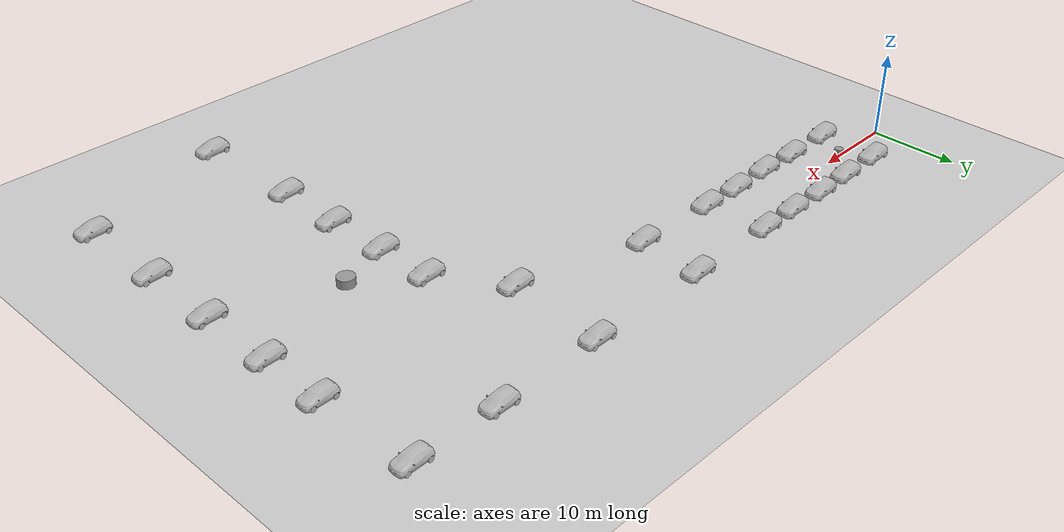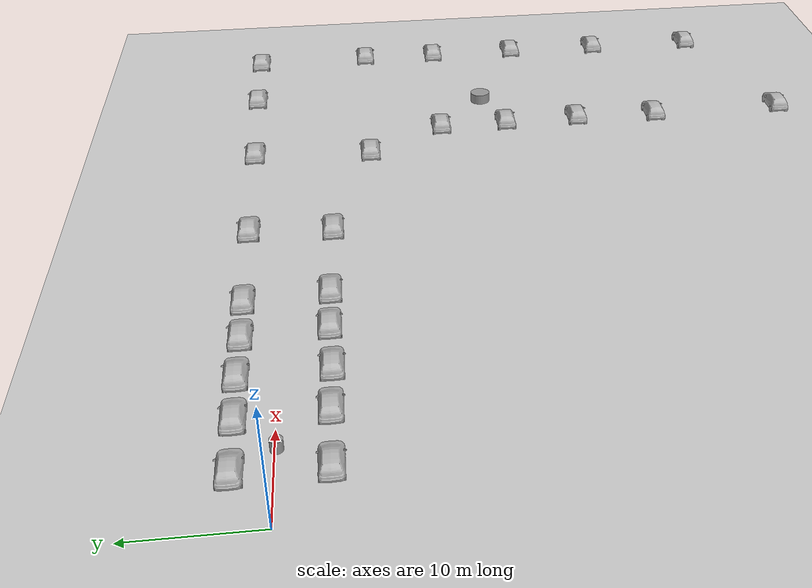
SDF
<sdf version="1.6">
 <world name="default">
  <light name="sun" type="directional">
   <pose>0 0 10 0 -0 0</pose>
   <diffuse>0.8 0.8 0.8 1</diffuse>
   <specular>0.2 0.2 0.2 1</specular>
   <attenuation>
    <range>1000</range>
    <constant>0.9</constant>
    <linear>0.01</linear>
    <quadratic>0.001</quadratic>
   </attenuation>
   <direction>-0.5 0.1 -0.9</direction>
   <spot><inner_angle>0</inner_angle><outer_angle>0</outer_angle><falloff>0</falloff></spot>
  </light>
  <model name="ground_plane">
   <static>1</static>
   <link name="link">
    <collision name="collision">
     <geometry><plane><normal>0 0 1</normal><size>100 100</size></plane></geometry>
     <surface><friction><ode><mu>100</mu><mu2>50</mu2></ode></friction></surface>
    </collision>
    <visual name="visual">
     <cast_shadows>0</cast_shadows>
     <geometry><plane><normal>0 0 1</normal><size>100 100</size></plane></geometry>
     <material>
      <script><uri>file://media/materials/scripts/gazebo.material</uri><name>Gazebo/Grey</name></script>
     </material>
    </visual>
   </link>
  </model>
  <gravity>0 0 -9.8</gravity>
  <magnetic_field>6e-06 2.3e-05 -4.2e-05</magnetic_field>
  <atmosphere type="adiabatic"/>
  <physics name="default_physics" default="0" type="ode">
   <max_step_size>0.001</max_step_size>
   <real_time_factor>1</real_time_factor>
   <real_time_update_rate>1000</real_time_update_rate>
  </physics>
  <scene><ambient>0.4 0.4 0.4 1</ambient><background>0.7 0.7 0.7 1</background><shadows>1</shadows></scene>
  <spherical_coordinates>
   <surface_model>EARTH_WGS84</surface_model>
   <latitude_deg>0</latitude_deg>
   <longitude_deg>0</longitude_deg>
   <elevation>0</elevation>
   <heading_deg>0</heading_deg>
  </spherical_coordinates>
  <model name="hatchback_red">
   <static>1</static>
   <link name="link">
    <collision name="collision">
     <pose>0 0 0 0 -0 1.5708</pose>
     <geometry>
      <mesh><scale>0.0254 0.0254 0.0254</scale><uri>model://hatchback_red/meshes/hatchback.obj</uri></mesh>
     </geometry>
    </collision>
    <visual name="visual">
     <pose>0 0 0 0 -0 1.5708</pose>
     <geometry>
      <mesh><scale>0.0254 0.0254 0.0254</scale><uri>model://hatchback_red/meshes/hatchback.obj</uri></mesh>
     </geometry>
    </visual>
   </link>
   <pose>15.953 3.10391 0 0 -0 0</pose>
  </model>
  <model name="hatchback_red_clone">
   <static>1</static>
   <link name="link">
    <collision name="collision">
     <pose>0 0 0 0 -0 1.5708</pose>
     <geometry>
      <mesh><scale>0.0254 0.0254 0.0254</scale><uri>model://hatchback_red/meshes/hatchback.obj</uri></mesh>
     </geometry>
    </collision>
    <visual name="visual">
     <pose>0 0 0 0 -0 1.5708</pose>
     <geometry>
      <mesh><scale>0.0254 0.0254 0.0254</scale><uri>model://hatchback_red/meshes/hatchback.obj</uri></mesh>
     </geometry>
    </visual>
   </link>
   <pose>5.27619 2.97949 0 0 -0 0</pose>
  </model>
  <model name="hatchback_red_clone_0">
   <static>1</static>
   <link name="link">
    <collision name="collision">
     <pose>0 0 0 0 -0 1.5708</pose>
     <geometry>
      <mesh><scale>0.0254 0.0254 0.0254</scale><uri>model://hatchback_red/meshes/hatchback.obj</uri></mesh>
     </geometry>
    </collision>
    <visual name="visual">
     <pose>0 0 0 0 -0 1.5708</pose>
     <geometry>
      <mesh><scale>0.0254 0.0254 0.0254</scale><uri>model://hatchback_red/meshes/hatchback.obj</uri></mesh>
     </geometry>
    </visual>
   </link>
   <pose>10.9474 3.03597 0 0 -0 0</pose>
  </model>
  <model name="hatchback_red_clone_1">
   <static>1</static>
   <link name="link">
    <collision name="collision">
     <pose>0 0 0 0 -0 1.5708</pose>
     <geometry>
      <mesh><scale>0.0254 0.0254 0.0254</scale><uri>model://hatchback_red/meshes/hatchback.obj</uri></mesh>
     </geometry>
    </collision>
    <visual name="visual">
     <pose>0 0 0 0 -0 1.5708</pose>
     <geometry>
      <mesh><scale>0.0254 0.0254 0.0254</scale><uri>model://hatchback_red/meshes/hatchback.obj</uri></mesh>
     </geometry>
    </visual>
   </link>
   <pose>21.0597 3.02119 0 0 -0 0</pose>
  </model>
  <model name="hatchback_red_clone_2">
   <static>1</static>
   <link name="link">
    <collision name="collision">
     <pose>0 0 0 0 -0 1.5708</pose>
     <geometry>
      <mesh><scale>0.0254 0.0254 0.0254</scale><uri>model://hatchback_red/meshes/hatchback.obj</uri></mesh>
     </geometry>
    </collision>
    <visual name="visual">
     <pose>0 0 0 0 -0 1.5708</pose>
     <geometry>
      <mesh><scale>0.0254 0.0254 0.0254</scale><uri>model://hatchback_red/meshes/hatchback.obj</uri></mesh>
     </geometry>
    </visual>
   </link>
   <pose>26.0705 3.0562 0 0 -0 0</pose>
  </model>
  <model name="hatchback_red_clone_3">
   <static>1</static>
   <link name="link">
    <collision name="collision">
     <pose>0 0 0 0 -0 1.5708</pose>
     <geometry>
      <mesh><scale>0.0254 0.0254 0.0254</scale><uri>model://hatchback_red/meshes/hatchback.obj</uri></mesh>
     </geometry>
    </collision>
    <visual name="visual">
     <pose>0 0 0 0 -0 1.5708</pose>
     <geometry>
      <mesh><scale>0.0254 0.0254 0.0254</scale><uri>model://hatchback_red/meshes/hatchback.obj</uri></mesh>
     </geometry>
    </visual>
   </link>
   <pose>5.16874 -3.97291 0 0 -0 0</pose>
  </model>
  <model name="hatchback_red_clone_4">
   <static>1</static>
   <link name="link">
    <collision name="collision">
     <pose>0 0 0 0 -0 1.5708</pose>
     <geometry>
      <mesh><scale>0.0254 0.0254 0.0254</scale><uri>model://hatchback_red/meshes/hatchback.obj</uri></mesh>
     </geometry>
    </collision>
    <visual name="visual">
     <pose>0 0 0 0 -0 1.5708</pose>
     <geometry>
      <mesh><scale>0.0254 0.0254 0.0254</scale><uri>model://hatchback_red/meshes/hatchback.obj</uri></mesh>
     </geometry>
    </visual>
   </link>
   <pose>11.2993 -3.98709 0 0 -0 0</pose>
  </model>
  <model name="hatchback_red_clone_5">
   <static>1</static>
   <link name="link">
    <collision name="collision">
     <pose>0 0 0 0 -0 1.5708</pose>
     <geometry>
      <mesh><scale>0.0254 0.0254 0.0254</scale><uri>model://hatchback_red/meshes/hatchback.obj</uri></mesh>
     </geometry>
    </collision>
    <visual name="visual">
     <pose>0 0 0 0 -0 1.5708</pose>
     <geometry>
      <mesh><scale>0.0254 0.0254 0.0254</scale><uri>model://hatchback_red/meshes/hatchback.obj</uri></mesh>
     </geometry>
    </visual>
   </link>
   <pose>16.3826 -4.12348 0 0 -0 0</pose>
  </model>
  <model name="hatchback_red_clone_6">
   <static>1</static>
   <link name="link">
    <collision name="collision">
     <pose>0 0 0 0 -0 1.5708</pose>
     <geometry>
      <mesh><scale>0.0254 0.0254 0.0254</scale><uri>model://hatchback_red/meshes/hatchback.obj</uri></mesh>
     </geometry>
    </collision>
    <visual name="visual">
     <pose>0 0 0 0 -0 1.5708</pose>
     <geometry>
      <mesh><scale>0.0254 0.0254 0.0254</scale><uri>model://hatchback_red/meshes/hatchback.obj</uri></mesh>
     </geometry>
    </visual>
   </link>
   <pose>21.7615 -3.98732 0 0 -0 0</pose>
  </model>
  <model name="hatchback_red_clone_7">
   <static>1</static>
   <link name="link">
    <collision name="collision">
     <pose>0 0 0 0 -0 1.5708</pose>
     <geometry>
      <mesh><scale>0.0254 0.0254 0.0254</scale><uri>model://hatchback_red/meshes/hatchback.obj</uri></mesh>
     </geometry>
    </collision>
    <visual name="visual">
     <pose>0 0 0 0 -0 1.5708</pose>
     <geometry>
      <mesh><scale>0.0254 0.0254 0.0254</scale><uri>model://hatchback_red/meshes/hatchback.obj</uri></mesh>
     </geometry>
    </visual>
   </link>
   <pose>26.7964 -4.08175 0 0 -0 0</pose>
  </model>
  <model name="unit_cylinder">
   <pose>7.821 -0.152979 0.499993 -3e-06 2e-06 0</pose>
   <link name="link">
    <inertial>
     <mass>1</mass>
     <inertia><ixx>0.145833</ixx><ixy>0</ixy><ixz>0</ixz><iyy>0.145833</iyy><iyz>0</iyz><izz>0.125</izz></inertia>
    </inertial>
    <collision name="collision">
     <geometry><cylinder><radius>0.5</radius><length>1</length></cylinder></geometry>
    </collision>
    <visual name="visual">
     <geometry><cylinder><radius>0.5</radius><length>1</length></cylinder></geometry>
     <material>
      <script><name>Gazebo/Grey</name><uri>file://media/materials/scripts/gazebo.material</uri></script>
     </material>
    </visual>
   </link>
  </model>
  <model name="hatchback_red_clone_2_clone">
   <static>1</static>
   <link name="link">
    <collision name="collision">
     <pose>0 0 0 0 -0 1.5708</pose>
     <geometry>
      <mesh><scale>0.0254 0.0254 0.0254</scale><uri>model://hatchback_red/meshes/hatchback.obj</uri></mesh>
     </geometry>
    </collision>
    <visual name="visual">
     <pose>0 0 0 0 -0 1.5708</pose>
     <geometry>
      <mesh><scale>0.0254 0.0254 0.0254</scale><uri>model://hatchback_red/meshes/hatchback.obj</uri></mesh>
     </geometry>
    </visual>
   </link>
   <pose>37.406 3.08131 0 0 -0 0</pose>
  </model>
  <model name="hatchback_red_clone_2_clone_0">
   <static>1</static>
   <link name="link">
    <collision name="collision">
     <pose>0 0 0 0 -0 1.5708</pose>
     <geometry>
      <mesh><scale>0.0254 0.0254 0.0254</scale><uri>model://hatchback_red/meshes/hatchback.obj</uri></mesh>
     </geometry>
    </collision>
    <visual name="visual">
     <pose>0 0 0 0 -0 1.5708</pose>
     <geometry>
      <mesh><scale>0.0254 0.0254 0.0254</scale><uri>model://hatchback_red/meshes/hatchback.obj</uri></mesh>
     </geometry>
    </visual>
   </link>
   <pose>52.3722 3.09722 0 0 -0 0</pose>
  </model>
  <model name="hatchback_red_clone_2_clone_1">
   <static>1</static>
   <link name="link">
    <collision name="collision">
     <pose>0 0 0 0 -0 1.5708</pose>
     <geometry>
      <mesh><scale>0.0254 0.0254 0.0254</scale><uri>model://hatchback_red/meshes/hatchback.obj</uri></mesh>
     </geometry>
    </collision>
    <visual name="visual">
     <pose>0 0 0 0 -0 1.5708</pose>
     <geometry>
      <mesh><scale>0.0254 0.0254 0.0254</scale><uri>model://hatchback_red/meshes/hatchback.obj</uri></mesh>
     </geometry>
    </visual>
   </link>
   <pose>65.2187 3.29451 0 0 -0 0</pose>
  </model>
  <model name="hatchback_red_clone_2_clone_2">
   <static>1</static>
   <link name="link">
    <collision name="collision">
     <pose>0 0 0 0 -0 1.5708</pose>
     <geometry>
      <mesh><scale>0.0254 0.0254 0.0254</scale><uri>model://hatchback_red/meshes/hatchback.obj</uri></mesh>
     </geometry>
    </collision>
    <visual name="visual">
     <pose>0 0 0 0 -0 1.5708</pose>
     <geometry>
      <mesh><scale>0.0254 0.0254 0.0254</scale><uri>model://hatchback_red/meshes/hatchback.obj</uri></mesh>
     </geometry>
    </visual>
   </link>
   <pose>36.9297 -4.43738 0 0 -0 0</pose>
  </model>
  <model name="hatchback_red_clone_2_clone_3">
   <static>1</static>
   <link name="link">
    <collision name="collision">
     <pose>0 0 0 0 -0 1.5708</pose>
     <geometry>
      <mesh><scale>0.0254 0.0254 0.0254</scale><uri>model://hatchback_red/meshes/hatchback.obj</uri></mesh>
     </geometry>
    </collision>
    <visual name="visual">
     <pose>0 0 0 0 -0 1.5708</pose>
     <geometry>
      <mesh><scale>0.0254 0.0254 0.0254</scale><uri>model://hatchback_red/meshes/hatchback.obj</uri></mesh>
     </geometry>
    </visual>
   </link>
   <pose>51.66 -8.3413 0 0 -0 0</pose>
  </model>
  <model name="hatchback_red_clone_2_clone_3_clone">
   <static>1</static>
   <link name="link">
    <collision name="collision">
     <pose>0 0 0 0 -0 1.5708</pose>
     <geometry>
      <mesh><scale>0.0254 0.0254 0.0254</scale><uri>model://hatchback_red/meshes/hatchback.obj</uri></mesh>
     </geometry>
    </collision>
    <visual name="visual">
     <pose>0 0 0 0 -0 1.5708</pose>
     <geometry>
      <mesh><scale>0.0254 0.0254 0.0254</scale><uri>model://hatchback_red/meshes/hatchback.obj</uri></mesh>
     </geometry>
    </visual>
   </link>
   <pose>75.2255 3.26784 0 0 -0 0</pose>
  </model>
  <model name="hatchback_red_clone_2_clone_3_clone_0">
   <static>1</static>
   <link name="link">
    <collision name="collision">
     <pose>0 0 0 0 -0 1.5708</pose>
     <geometry>
      <mesh><scale>0.0254 0.0254 0.0254</scale><uri>model://hatchback_red/meshes/hatchback.obj</uri></mesh>
     </geometry>
    </collision>
    <visual name="visual">
     <pose>0 0 0 0 -0 1.5708</pose>
     <geometry>
      <mesh><scale>0.0254 0.0254 0.0254</scale><uri>model://hatchback_red/meshes/hatchback.obj</uri></mesh>
     </geometry>
    </visual>
   </link>
   <pose>75.6745 -8.61046 0 0 -0 0</pose>
  </model>
  <model name="hatchback_red_clone_2_clone_3_clone_1">
   <static>1</static>
   <link name="link">
    <collision name="collision">
     <pose>0 0 0 0 -0 1.5708</pose>
     <geometry>
      <mesh><scale>0.0254 0.0254 0.0254</scale><uri>model://hatchback_red/meshes/hatchback.obj</uri></mesh>
     </geometry>
    </collision>
    <visual name="visual">
     <pose>0 0 0 0 -0 1.5708</pose>
     <geometry>
      <mesh><scale>0.0254 0.0254 0.0254</scale><uri>model://hatchback_red/meshes/hatchback.obj</uri></mesh>
     </geometry>
    </visual>
   </link>
   <pose>56.6331 -15.8458 0 0 -0 0</pose>
  </model>
  <model name="hatchback_red_clone_2_clone_3_clone_2">
   <static>1</static>
   <link name="link">
    <collision name="collision">
     <pose>0 0 0 0 -0 1.5708</pose>
     <geometry>
      <mesh><scale>0.0254 0.0254 0.0254</scale><uri>model://hatchback_red/meshes/hatchback.obj</uri></mesh>
     </geometry>
    </collision>
    <visual name="visual">
     <pose>0 0 0 0 -0 1.5708</pose>
     <geometry>
      <mesh><scale>0.0254 0.0254 0.0254</scale><uri>model://hatchback_red/meshes/hatchback.obj</uri></mesh>
     </geometry>
    </visual>
   </link>
   <pose>56.7944 -22.6515 0 0 -0 0</pose>
  </model>
  <model name="hatchback_red_clone_2_clone_3_clone_0_clone">
   <static>1</static>
   <link name="link">
    <collision name="collision">
     <pose>0 0 0 0 -0 1.5708</pose>
     <geometry>
      <mesh><scale>0.0254 0.0254 0.0254</scale><uri>model://hatchback_red/meshes/hatchback.obj</uri></mesh>
     </geometry>
    </collision>
    <visual name="visual">
     <pose>0 0 0 0 -0 1.5708</pose>
     <geometry>
      <mesh><scale>0.0254 0.0254 0.0254</scale><uri>model://hatchback_red/meshes/hatchback.obj</uri></mesh>
     </geometry>
    </visual>
   </link>
   <pose>75.5944 -16.4467 0 0 -0 0</pose>
  </model>
  <model name="hatchback_red_clone_2_clone_3_clone_0_clone_0">
   <static>1</static>
   <link name="link">
    <collision name="collision">
     <pose>0 0 0 0 -0 1.5708</pose>
     <geometry>
      <mesh><scale>0.0254 0.0254 0.0254</scale><uri>model://hatchback_red/meshes/hatchback.obj</uri></mesh>
     </geometry>
    </collision>
    <visual name="visual">
     <pose>0 0 0 0 -0 1.5708</pose>
     <geometry>
      <mesh><scale>0.0254 0.0254 0.0254</scale><uri>model://hatchback_red/meshes/hatchback.obj</uri></mesh>
     </geometry>
    </visual>
   </link>
   <pose>75.7068 -25.5671 0 0 -0 0</pose>
  </model>
  <model name="hatchback_red_clone_2_clone_3_clone_0_clone_1">
   <static>1</static>
   <link name="link">
    <collision name="collision">
     <pose>0 0 0 0 -0 1.5708</pose>
     <geometry>
      <mesh><scale>0.0254 0.0254 0.0254</scale><uri>model://hatchback_red/meshes/hatchback.obj</uri></mesh>
     </geometry>
    </collision>
    <visual name="visual">
     <pose>0 0 0 0 -0 1.5708</pose>
     <geometry>
      <mesh><scale>0.0254 0.0254 0.0254</scale><uri>model://hatchback_red/meshes/hatchback.obj</uri></mesh>
     </geometry>
    </visual>
   </link>
   <pose>56.9792 -30.2239 0 0 -0 0</pose>
  </model>
  <model name="hatchback_red_clone_2_clone_3_clone_0_clone_2">
   <static>1</static>
   <link name="link">
    <collision name="collision">
     <pose>0 0 0 0 -0 1.5708</pose>
     <geometry>
      <mesh><scale>0.0254 0.0254 0.0254</scale><uri>model://hatchback_red/meshes/hatchback.obj</uri></mesh>
     </geometry>
    </collision>
    <visual name="visual">
     <pose>0 0 0 0 -0 1.5708</pose>
     <geometry>
      <mesh><scale>0.0254 0.0254 0.0254</scale><uri>model://hatchback_red/meshes/hatchback.obj</uri></mesh>
     </geometry>
    </visual>
   </link>
   <pose>75.6249 -35.323 0 0 -0 0</pose>
  </model>
  <model name="hatchback_red_clone_2_clone_3_clone_0_clone_3">
   <static>1</static>
   <link name="link">
    <collision name="collision">
     <pose>0 0 0 0 -0 1.5708</pose>
     <geometry>
      <mesh><scale>0.0254 0.0254 0.0254</scale><uri>model://hatchback_red/meshes/hatchback.obj</uri></mesh>
     </geometry>
    </collision>
    <visual name="visual">
     <pose>0 0 0 0 -0 1.5708</pose>
     <geometry>
      <mesh><scale>0.0254 0.0254 0.0254</scale><uri>model://hatchback_red/meshes/hatchback.obj</uri></mesh>
     </geometry>
    </visual>
   </link>
   <pose>56.8927 -38.5692 0 0 -0 0</pose>
  </model>
  <model name="unit_cylinder_0">
   <link name="link">
    <inertial>
     <mass>1</mass>
     <inertia><ixx>0.145833</ixx><ixy>0</ixy><ixz>0</ixz><iyy>0.145833</iyy><iyz>0</iyz><izz>0.125</izz></inertia>
    </inertial>
    <pose>2.01437 -0.237568 -0 0 -0 0</pose>
    <visual name="visual">
     <geometry><cylinder><radius>1</radius><length>1</length></cylinder></geometry>
     <material>
      <script><name>Gazebo/Grey</name><uri>file://media/materials/scripts/gazebo.material</uri></script>
      <shader type="pixel"><normal_map>__default__</normal_map></shader>
      <ambient>0.3 0.3 0.3 1</ambient>
      <diffuse>0.7 0.7 0.7 1</diffuse>
      <specular>0.01 0.01 0.01 1</specular>
      <emissive>0 0 0 1</emissive>
     </material>
    </visual>
    <collision name="collision">
     <geometry><cylinder><radius>1</radius><length>1</length></cylinder></geometry>
     <surface>
      <friction>
       <ode><mu>1</mu><mu2>1</mu2><fdir1>0 0 0</fdir1><slip1>0</slip1><slip2>0</slip2></ode>
       <torsional>
        <coefficient>1</coefficient>
        <patch_radius>0</patch_radius>
        <surface_radius>0</surface_radius>
        <use_patch_radius>1</use_patch_radius>
        <ode><slip>0</slip></ode>
       </torsional>
      </friction>
      <bounce><restitution_coefficient>0</restitution_coefficient><threshold>1e+06</threshold></bounce>
      <contact>
       <collide_without_contact>0</collide_without_contact>
       <collide_without_contact_bitmask>1</collide_without_contact_bitmask>
       <collide_bitmask>1</collide_bitmask>
       <ode>
        <soft_cfm>0</soft_cfm>
        <soft_erp>0.2</soft_erp>
        <kp>1e+13</kp>
        <kd>1</kd>
        <max_vel>0.01</max_vel>
        <min_depth>0</min_depth>
       </ode>
       <bullet>
        <split_impulse>1</split_impulse>
        <split_impulse_penetration_threshold>-0.01</split_impulse_penetration_threshold>
        <soft_cfm>0</soft_cfm>
        <soft_erp>0.2</soft_erp>
        <kp>1e+13</kp>
        <kd>1</kd>
       </bullet>
      </contact>
     </surface>
    </collision>
   </link>
   <static>0</static>
   <pose>61.221 -20.4212 0.5 0 -0 0</pose>
  </model>
  <model name="hatchback_red_clone_2_clone_3_clone_0_clone_2_clone">
   <static>1</static>
   <link name="link">
    <collision name="collision">
     <pose>0 0 0 0 -0 1.5708</pose>
     <geometry>
      <mesh><scale>0.0254 0.0254 0.0254</scale><uri>model://hatchback_red/meshes/hatchback.obj</uri></mesh>
     </geometry>
    </collision>
    <visual name="visual">
     <pose>0 0 0 0 -0 1.5708</pose>
     <geometry>
      <mesh><scale>0.0254 0.0254 0.0254</scale><uri>model://hatchback_red/meshes/hatchback.obj</uri></mesh>
     </geometry>
    </visual>
   </link>
   <pose>75.6783 -46.562 0 0 -0 0</pose>
  </model>
  <model name="hatchback_red_clone_2_clone_3_clone_0_clone_2_clone_0">
   <static>1</static>
   <link name="link">
    <collision name="collision">
     <pose>0 0 0 0 -0 1.5708</pose>
     <geometry>
      <mesh><scale>0.0254 0.0254 0.0254</scale><uri>model://hatchback_red/meshes/hatchback.obj</uri></mesh>
     </geometry>
    </collision>
    <visual name="visual">
     <pose>0 0 0 0 -0 1.5708</pose>
     <geometry>
      <mesh><scale>0.0254 0.0254 0.0254</scale><uri>model://hatchback_red/meshes/hatchback.obj</uri></mesh>
     </geometry>
    </visual>
   </link>
   <pose>57.2656 -52.121 0 0 -0 0</pose>
  </model>
 </world>
</sdf>
